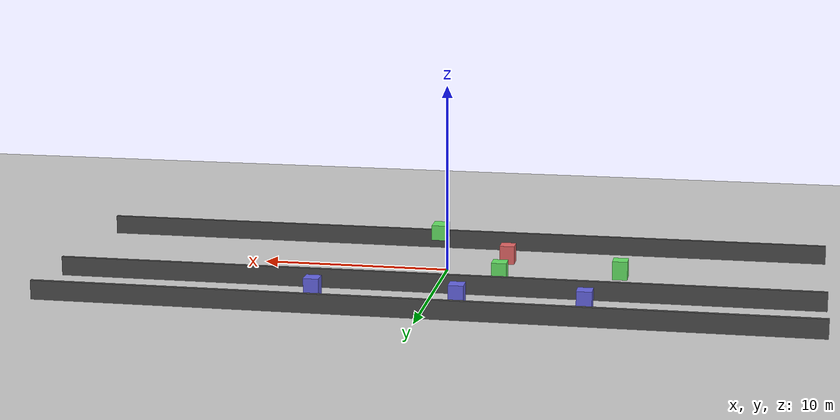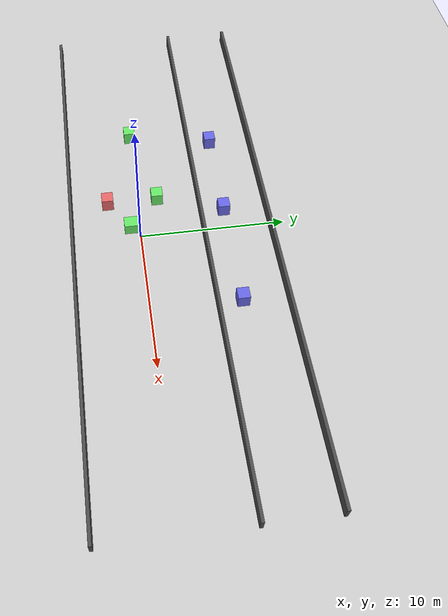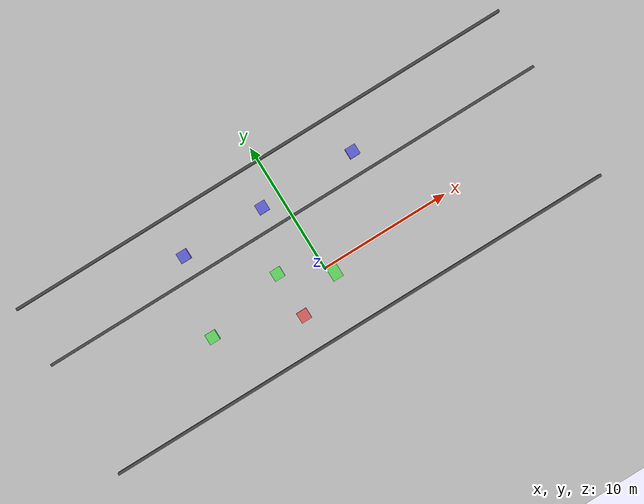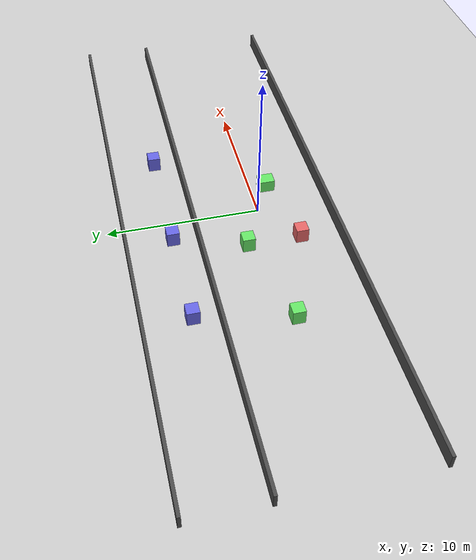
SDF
<sdf version='1.9'>
  <world name='pasillos_obstaculos'>
    <plugin name='ignition::gazebo::systems::Physics' filename='ignition-gazebo-physics-system'/>
    <plugin name='ignition::gazebo::systems::UserCommands' filename='ignition-gazebo-user-commands-system'/>
    <plugin name='ignition::gazebo::systems::SceneBroadcaster' filename='ignition-gazebo-scene-broadcaster-system'/>
    <plugin name='ignition::gazebo::systems::Sensors' filename='ignition-gazebo-sensors-system'>
      <render_engine>ogre2</render_engine>
    </plugin>
    <plugin name='ignition::gazebo::systems::Imu' filename='ignition-gazebo-imu-system'/>
    <plugin name='ignition::gazebo::systems::NavSat' filename='ignition-gazebo-navsat-system'/>
    <spherical_coordinates>
      <surface_model>EARTH_WGS84</surface_model>
      <latitude_deg>-31.421914000000001</latitude_deg>
      <longitude_deg>-64.102515999999994</longitude_deg>
      <elevation>0</elevation>
      <heading_deg>0</heading_deg>
    </spherical_coordinates>
    <physics name='3ms' type='ode'>
      <max_step_size>0.0030000000000000001</max_step_size>
      <real_time_factor>1</real_time_factor>
      <real_time_update_rate>1000</real_time_update_rate>
    </physics>
    <gravity>0 0 -9.8</gravity>
    <magnetic_field>6e-06 2.3e-05 -4.2e-05</magnetic_field>
    <atmosphere type='adiabatic'/>
    <scene>
      <ambient>0.4 0.4 0.4 1</ambient>
      <background>0.7 0.7 0.7 1</background>
      <shadows>true</shadows>
    </scene>
    <model name='ground_plane'>
      <static>true</static>
      <link name='link'>
        <collision name='collision'>
          <geometry>
            <plane>
              <normal>0 0 1</normal>
              <size>100 100</size>
            </plane>
          </geometry>
          <max_contacts>10</max_contacts>
          <surface>
            <friction>
              <ode/>
            </friction>
            <bounce/>
            <contact/>
          </surface>
        </collision>
        <visual name='visual'>
          <geometry>
            <plane>
              <normal>0 0 1</normal>
              <size>100 100</size>
            </plane>
          </geometry>
          <material>
            <ambient>0.8 0.8 0.8 1</ambient>
            <diffuse>0.8 0.8 0.8 1</diffuse>
            <specular>0.8 0.8 0.8 1</specular>
          </material>
        </visual>
        <pose>0 0 0 0 -0 0</pose>
        <inertial>
          <pose>0 0 0 0 -0 0</pose>
          <mass>1</mass>
          <inertia>
            <ixx>1</ixx>
            <ixy>0</ixy>
            <ixz>0</ixz>
            <iyy>1</iyy>
            <iyz>0</iyz>
            <izz>1</izz>
          </inertia>
        </inertial>
        <enable_wind>false</enable_wind>
      </link>
      <pose>0 0 0 0 -0 0</pose>
      <self_collide>false</self_collide>
    </model>
    <model name='corridor_wall_2'>
      <static>true</static>
      <pose>0 -4.6479 0.5 0 -0 0</pose>
      <link name='link'>
        <collision name='collision'>
          <geometry>
            <box>
              <size>40 0.2 1</size>
            </box>
          </geometry>
          <surface>
            <friction>
              <ode/>
            </friction>
            <bounce/>
            <contact/>
          </surface>
        </collision>
        <visual name='visual'>
          <geometry>
            <box>
              <size>40 0.2 1</size>
            </box>
          </geometry>
          <material>
            <ambient>0.2 0.2 0.2 1</ambient>
            <diffuse>0.3 0.3 0.3 1</diffuse>
          </material>
        </visual>
        <pose>0 0 0 0 -0 0</pose>
        <inertial>
          <pose>0 0 0 0 -0 0</pose>
          <mass>1</mass>
          <inertia>
            <ixx>1</ixx>
            <ixy>0</ixy>
            <ixz>0</ixz>
            <iyy>1</iyy>
            <iyz>0</iyz>
            <izz>1</izz>
          </inertia>
        </inertial>
        <enable_wind>false</enable_wind>
      </link>
      <self_collide>false</self_collide>
    </model>
    <model name='corridor_wall_3'>
      <static>true</static>
      <pose>0 4.37449 0.5 0 -0 0</pose>
      <link name='link'>
        <collision name='collision'>
          <geometry>
            <box>
              <size>40 0.2 1</size>
            </box>
          </geometry>
          <surface>
            <friction>
              <ode/>
            </friction>
            <bounce/>
            <contact/>
          </surface>
        </collision>
        <visual name='visual'>
          <geometry>
            <box>
              <size>40 0.2 1</size>
            </box>
          </geometry>
          <material>
            <ambient>0.2 0.2 0.2 1</ambient>
            <diffuse>0.3 0.3 0.3 1</diffuse>
          </material>
        </visual>
        <pose>0 0 0 0 -0 0</pose>
        <inertial>
          <pose>0 0 0 0 -0 0</pose>
          <mass>1</mass>
          <inertia>
            <ixx>1</ixx>
            <ixy>0</ixy>
            <ixz>0</ixz>
            <iyy>1</iyy>
            <iyz>0</iyz>
            <izz>1</izz>
          </inertia>
        </inertial>
        <enable_wind>false</enable_wind>
      </link>
      <self_collide>false</self_collide>
    </model>
    <model name='corridor_wall_4'>
      <static>true</static>
      <pose>0 9 0.5 0 -0 0</pose>
      <link name='link'>
        <collision name='collision'>
          <geometry>
            <box>
              <size>40 0.2 1</size>
            </box>
          </geometry>
          <surface>
            <friction>
              <ode/>
            </friction>
            <bounce/>
            <contact/>
          </surface>
        </collision>
        <visual name='visual'>
          <geometry>
            <box>
              <size>40 0.2 1</size>
            </box>
          </geometry>
          <material>
            <ambient>0.2 0.2 0.2 1</ambient>
            <diffuse>0.3 0.3 0.3 1</diffuse>
          </material>
        </visual>
        <pose>0 0 0 0 -0 0</pose>
        <inertial>
          <pose>0 0 0 0 -0 0</pose>
          <mass>1</mass>
          <inertia>
            <ixx>1</ixx>
            <ixy>0</ixy>
            <ixz>0</ixz>
            <iyy>1</iyy>
            <iyz>0</iyz>
            <izz>1</izz>
          </inertia>
        </inertial>
        <enable_wind>false</enable_wind>
      </link>
      <self_collide>false</self_collide>
    </model>
    <model name='lane1_box_1'>
      <static>true</static>
      <pose>-3 -2.0402 0.5 0 -0 0</pose>
      <link name='link'>
        <collision name='collision'>
          <geometry>
            <box>
              <size>0.8 0.8 1</size>
            </box>
          </geometry>
          <surface>
            <friction>
              <ode/>
            </friction>
            <bounce/>
            <contact/>
          </surface>
        </collision>
        <visual name='visual'>
          <geometry>
            <box>
              <size>0.8 0.8 1</size>
            </box>
          </geometry>
          <material>
            <ambient>0.8 0.3 0.3 1</ambient>
            <diffuse>0.9 0.4 0.4 1</diffuse>
          </material>
        </visual>
        <pose>0 0 0 0 -0 0</pose>
        <inertial>
          <pose>0 0 0 0 -0 0</pose>
          <mass>1</mass>
          <inertia>
            <ixx>1</ixx>
            <ixy>0</ixy>
            <ixz>0</ixz>
            <iyy>1</iyy>
            <iyz>0</iyz>
            <izz>1</izz>
          </inertia>
        </inertial>
        <enable_wind>false</enable_wind>
      </link>
      <self_collide>false</self_collide>
    </model>
    <model name='lane2_box_1'>
      <static>true</static>
      <pose>-9.28947 0.06851 0.5 0 -0 1.5708</pose>
      <link name='link'>
        <collision name='collision'>
          <geometry>
            <box>
              <size>0.8 0.8 1</size>
            </box>
          </geometry>
          <surface>
            <friction>
              <ode/>
            </friction>
            <bounce/>
            <contact/>
          </surface>
        </collision>
        <visual name='visual'>
          <geometry>
            <box>
              <size>0.8 0.8 1</size>
            </box>
          </geometry>
          <material>
            <ambient>0.3 0.8 0.3 1</ambient>
            <diffuse>0.4 0.9 0.4 1</diffuse>
          </material>
        </visual>
        <pose>0 0 0 0 -0 0</pose>
        <inertial>
          <pose>0 0 0 0 -0 0</pose>
          <mass>1</mass>
          <inertia>
            <ixx>1</ixx>
            <ixy>0</ixy>
            <ixz>0</ixz>
            <iyy>1</iyy>
            <iyz>0</iyz>
            <izz>1</izz>
          </inertia>
        </inertial>
        <enable_wind>false</enable_wind>
      </link>
      <self_collide>false</self_collide>
    </model>
    <model name='lane2_box_2'>
      <static>true</static>
      <pose>0.449952 -0.567605 1.99757 1.57079 1.57079 -3.14159</pose>
      <link name='link'>
        <collision name='collision'>
          <geometry>
            <box>
              <size>0.8 0.8 1</size>
            </box>
          </geometry>
          <surface>
            <friction>
              <ode/>
            </friction>
            <bounce/>
            <contact/>
          </surface>
        </collision>
        <visual name='visual'>
          <geometry>
            <box>
              <size>0.8 0.8 1</size>
            </box>
          </geometry>
          <material>
            <ambient>0.3 0.8 0.3 1</ambient>
            <diffuse>0.4 0.9 0.4 1</diffuse>
          </material>
        </visual>
        <pose>0 0 0 0 -0 0</pose>
        <inertial>
          <pose>0 0 0 0 -0 0</pose>
          <mass>1</mass>
          <inertia>
            <ixx>1</ixx>
            <ixy>0</ixy>
            <ixz>0</ixz>
            <iyy>1</iyy>
            <iyz>0</iyz>
            <izz>1</izz>
          </inertia>
        </inertial>
        <enable_wind>false</enable_wind>
      </link>
      <self_collide>false</self_collide>
    </model>
    <model name='lane2_box_3'>
      <static>true</static>
      <pose>-3.0477 1.45484 0.5 0 -0 1.5708</pose>
      <link name='link'>
        <collision name='collision'>
          <geometry>
            <box>
              <size>0.8 0.8 1</size>
            </box>
          </geometry>
          <surface>
            <friction>
              <ode/>
            </friction>
            <bounce/>
            <contact/>
          </surface>
        </collision>
        <visual name='visual'>
          <geometry>
            <box>
              <size>0.8 0.8 1</size>
            </box>
          </geometry>
          <material>
            <ambient>0.3 0.8 0.3 1</ambient>
            <diffuse>0.4 0.9 0.4 1</diffuse>
          </material>
        </visual>
        <pose>0 0 0 0 -0 0</pose>
        <inertial>
          <pose>0 0 0 0 -0 0</pose>
          <mass>1</mass>
          <inertia>
            <ixx>1</ixx>
            <ixy>0</ixy>
            <ixz>0</ixz>
            <iyy>1</iyy>
            <iyz>0</iyz>
            <izz>1</izz>
          </inertia>
        </inertial>
        <enable_wind>false</enable_wind>
      </link>
      <self_collide>false</self_collide>
    </model>
    <model name='lane3_box_1'>
      <static>true</static>
      <pose>-8 6 0.5 0 -0 0</pose>
      <link name='link'>
        <collision name='collision'>
          <geometry>
            <box>
              <size>0.8 0.8 1</size>
            </box>
          </geometry>
          <surface>
            <friction>
              <ode/>
            </friction>
            <bounce/>
            <contact/>
          </surface>
        </collision>
        <visual name='visual'>
          <geometry>
            <box>
              <size>0.8 0.8 1</size>
            </box>
          </geometry>
          <material>
            <ambient>0.3 0.3 0.8 1</ambient>
            <diffuse>0.4 0.4 0.9 1</diffuse>
          </material>
        </visual>
        <pose>0 0 0 0 -0 0</pose>
        <inertial>
          <pose>0 0 0 0 -0 0</pose>
          <mass>1</mass>
          <inertia>
            <ixx>1</ixx>
            <ixy>0</ixy>
            <ixz>0</ixz>
            <iyy>1</iyy>
            <iyz>0</iyz>
            <izz>1</izz>
          </inertia>
        </inertial>
        <enable_wind>false</enable_wind>
      </link>
      <self_collide>false</self_collide>
    </model>
    <model name='lane3_box_2'>
      <static>true</static>
      <pose>-1.5 6 0.5 0 -0 0</pose>
      <link name='link'>
        <collision name='collision'>
          <geometry>
            <box>
              <size>0.8 0.8 1</size>
            </box>
          </geometry>
          <surface>
            <friction>
              <ode/>
            </friction>
            <bounce/>
            <contact/>
          </surface>
        </collision>
        <visual name='visual'>
          <geometry>
            <box>
              <size>0.8 0.8 1</size>
            </box>
          </geometry>
          <material>
            <ambient>0.3 0.3 0.8 1</ambient>
            <diffuse>0.4 0.4 0.9 1</diffuse>
          </material>
        </visual>
        <pose>0 0 0 0 -0 0</pose>
        <inertial>
          <pose>0 0 0 0 -0 0</pose>
          <mass>1</mass>
          <inertia>
            <ixx>1</ixx>
            <ixy>0</ixy>
            <ixz>0</ixz>
            <iyy>1</iyy>
            <iyz>0</iyz>
            <izz>1</izz>
          </inertia>
        </inertial>
        <enable_wind>false</enable_wind>
      </link>
      <self_collide>false</self_collide>
    </model>
    <model name='lane3_box_3'>
      <static>true</static>
      <pose>6 6 0.5 0 -0 0</pose>
      <link name='link'>
        <collision name='collision'>
          <geometry>
            <box>
              <size>0.8 0.8 1</size>
            </box>
          </geometry>
          <surface>
            <friction>
              <ode/>
            </friction>
            <bounce/>
            <contact/>
          </surface>
        </collision>
        <visual name='visual'>
          <geometry>
            <box>
              <size>0.8 0.8 1</size>
            </box>
          </geometry>
          <material>
            <ambient>0.3 0.3 0.8 1</ambient>
            <diffuse>0.4 0.4 0.9 1</diffuse>
          </material>
        </visual>
        <pose>0 0 0 0 -0 0</pose>
        <inertial>
          <pose>0 0 0 0 -0 0</pose>
          <mass>1</mass>
          <inertia>
            <ixx>1</ixx>
            <ixy>0</ixy>
            <ixz>0</ixz>
            <iyy>1</iyy>
            <iyz>0</iyz>
            <izz>1</izz>
          </inertia>
        </inertial>
        <enable_wind>false</enable_wind>
      </link>
      <self_collide>false</self_collide>
    </model>
    <light name='sun' type='directional'>
      <pose>0 0 10 0 -0 0</pose>
      <cast_shadows>false</cast_shadows>
      <intensity>1</intensity>
      <direction>-0.5 0.1 -0.9</direction>
      <diffuse>0.8 0.8 0.8 1</diffuse>
      <specular>0.8 0.8 0.8 1</specular>
      <attenuation>
        <range>1000</range>
        <linear>0.01</linear>
        <constant>0.90000000000000002</constant>
        <quadratic>0.001</quadratic>
      </attenuation>
      <spot>
        <inner_angle>0</inner_angle>
        <outer_angle>0</outer_angle>
        <falloff>0</falloff>
      </spot>
    </light>
  </world>
</sdf>
